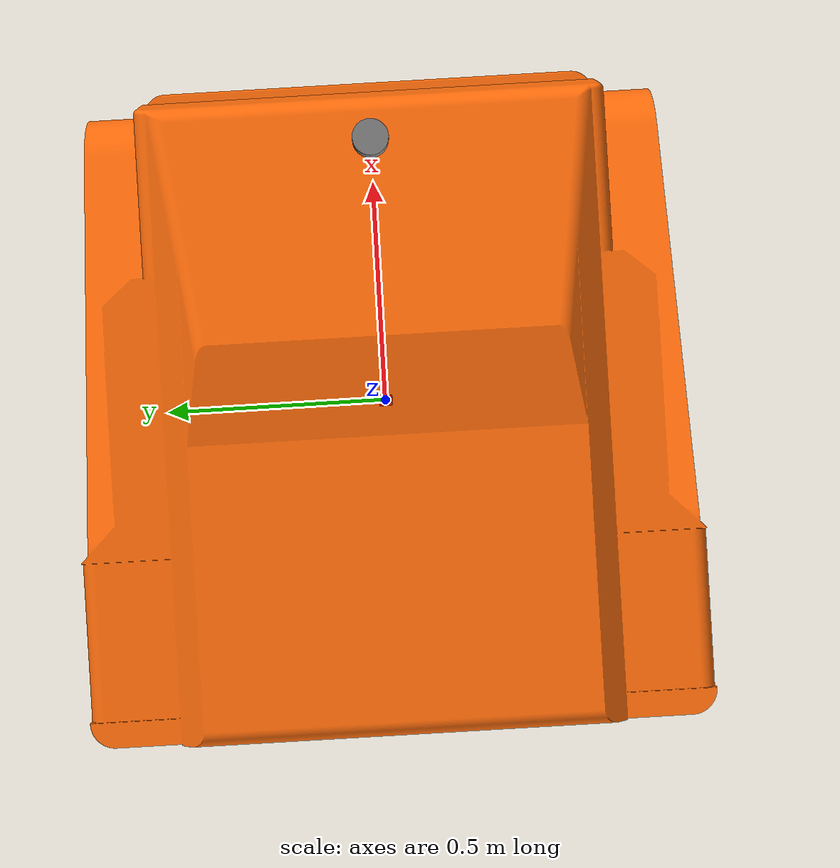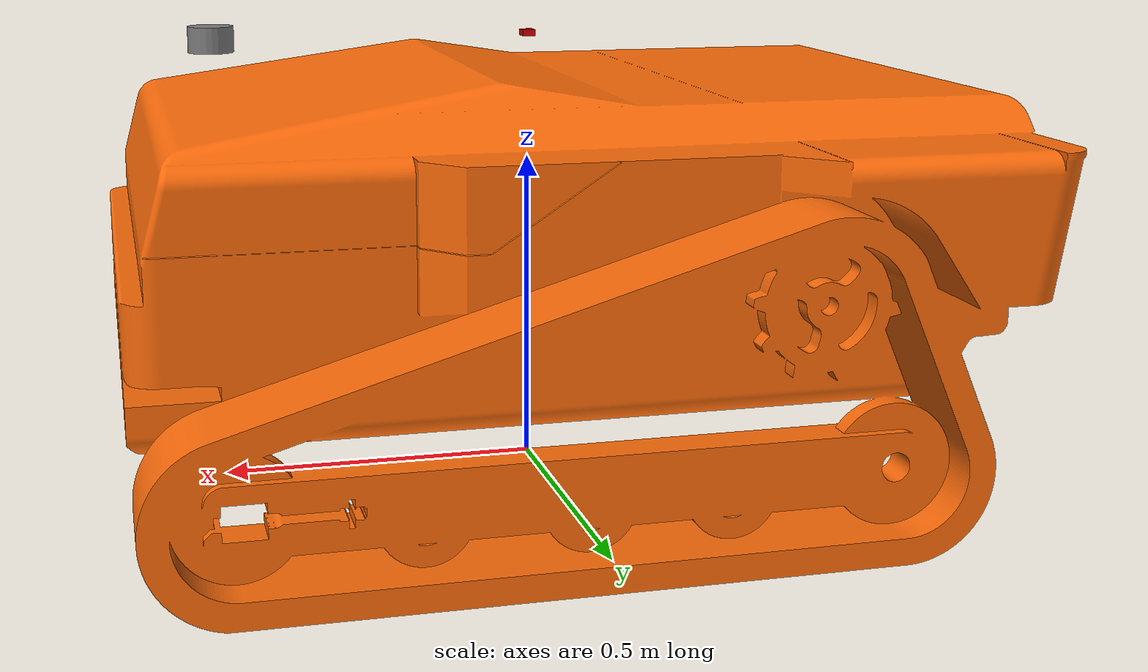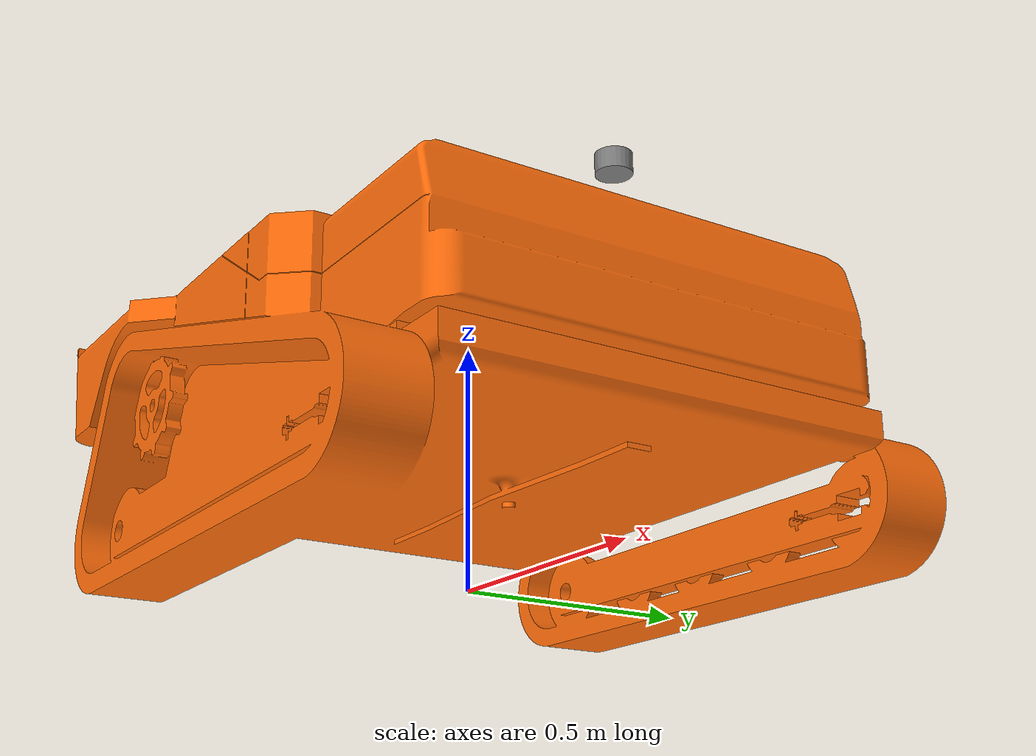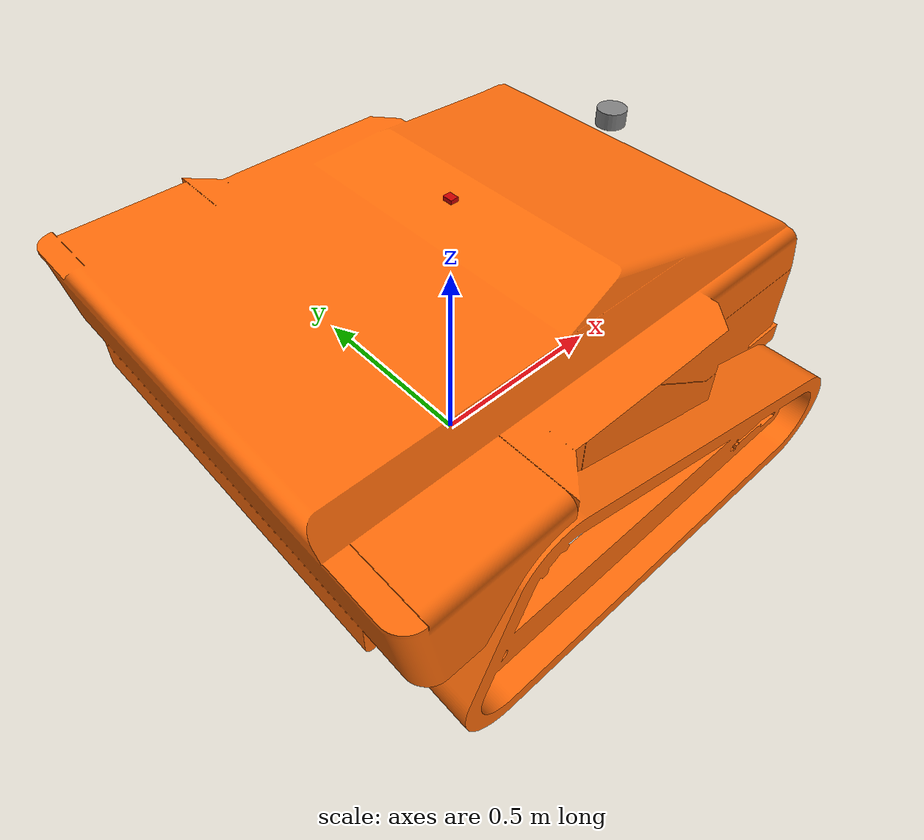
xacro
<?xml version="1.0"?>
<!-- mowbot_base.urdf.xacro -->

<robot xmlns:xacro="http://www.ros.org/wiki/xacro">

  <material name="red">
    <color rgba="0.8 0.0 0.0 1.0"/>
  </material>

  <material name="grey">
    <color rgba="0.5 0.5 0.5 1.0"/>
  </material>

  <material name="orange">
    <color rgba="1.0 0.4235 0.0392 1.0"/>
  </material>

  <link name="base_footprint"/>

  <joint name="base_joint" type="fixed">
    <parent link="base_footprint"/>
    <child link="base_link" />
    <origin xyz="0.0 0.0 0.0" rpy="0.0 0.0 0.0"/>
  </joint>

  <link name="base_link">
    <visual>
      <origin xyz="0.0 0.0 0.0" rpy="0.0 0.0 0.0"/>
      <geometry>
        <mesh filename="package://mowbot_description/meshes/mowbot_v01.stl" scale="1.0 1.0 1.0"/>
      </geometry>
      <material name="orange"/>
    </visual>

    <collision>
      <origin xyz="0.0 0.0 0.0" rpy="0.0 0.0 0.0"/>
      <geometry>
        <box size="1.32 1.24 0.662"/>
      </geometry>
    </collision>

  </link>

  <joint name="imu_joint" type="fixed">
    <parent link="base_link"/>
    <child link="imu_link"/>
    <origin xyz="0.0 0.0 0.7" rpy="0.0 0.0 0.0"/>
  </joint>

  <link name="imu_link">
    <visual>
      <origin xyz="0.0 0.0 0.0" rpy="0.0 0.0 0.0"/>
      <geometry>
        <box size="0.02 0.025 0.01"/>
      </geometry>
      <material name="red"/>
    </visual>
  </link>

  <joint name="scan_joint" type="fixed">
    <parent link="base_link"/>
    <child link="scan_link"/>
    <origin xyz="0.5 0.0 0.7" rpy="0.0 0.0 0.0"/>
  </joint>

  <link name="scan_link" >
    <visual>
      <origin xyz="0.0 0.0 0.0" rpy="0.0 0.0 0.0"/>
      <geometry>
        <cylinder radius="0.035" length="0.04"/>
      </geometry>
      <material name="grey"/>
    </visual>
  </link>

</robot>
